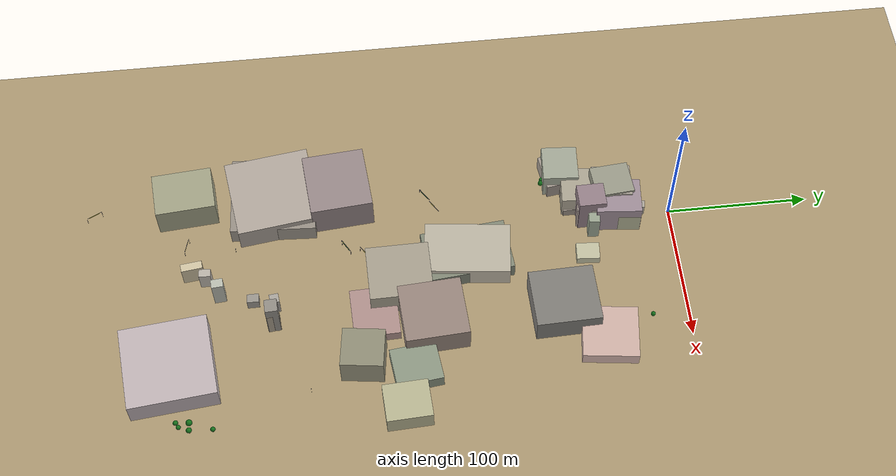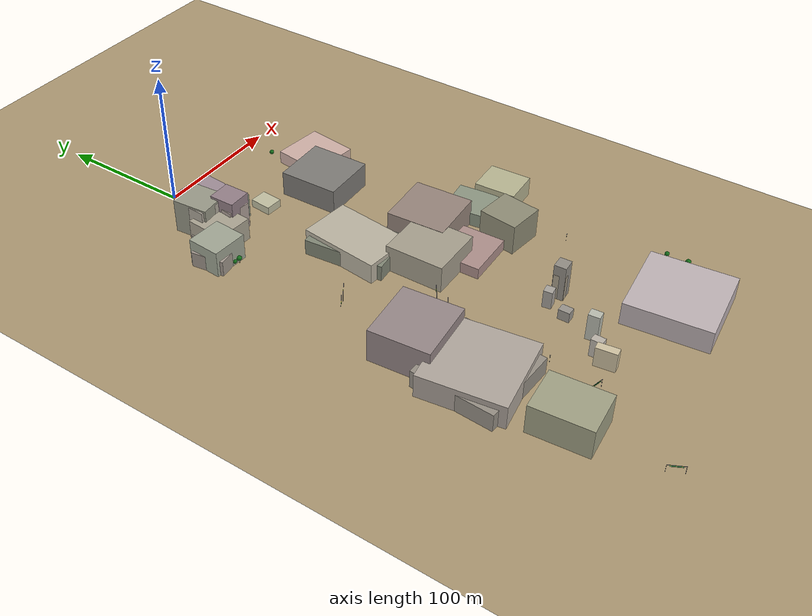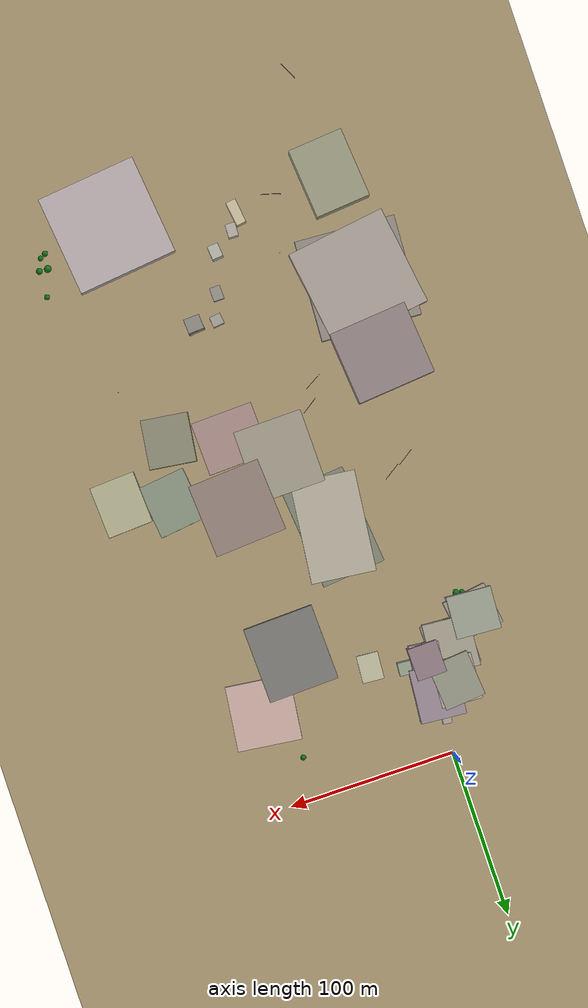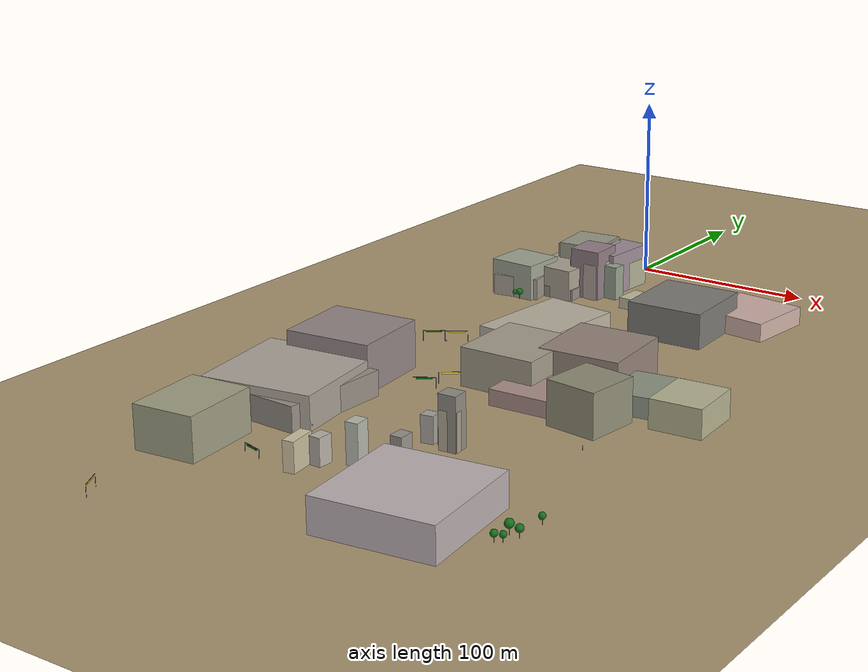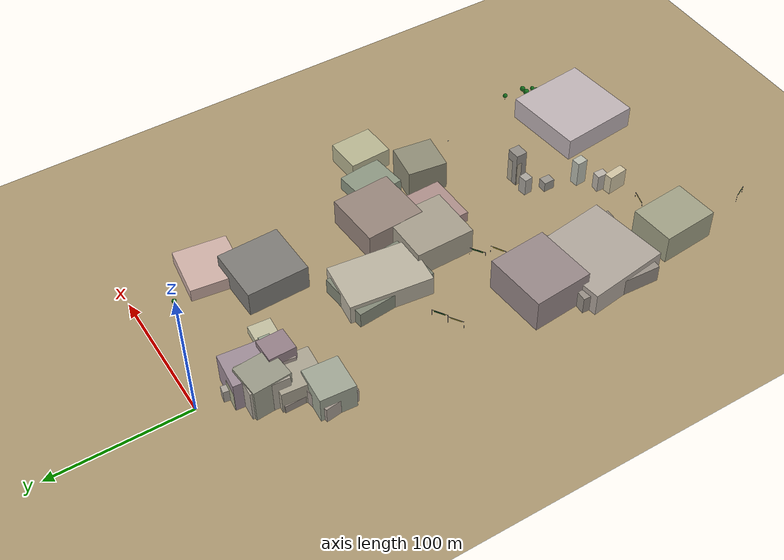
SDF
<sdf version="1.9">
 <world name="crossroad_world">
  <model name="ground_plane">
   <static>true</static>
   <pose>0 0 -0.05 0 0 0</pose>
   <link name="link">
    <collision name="collision">
     <geometry><plane><normal>0 0 1</normal><size>10000 10000</size></plane></geometry>
    </collision>
    <visual name="visual">
     <geometry><plane><normal>0 0 1</normal><size>15000 15000</size></plane></geometry>
     <material><ambient>0.68 0.60 0.45 1</ambient><diffuse>0.68 0.60 0.45 1</diffuse></material>
    </visual>
   </link>
  </model>
  <model name="tl_1">
   <static>true</static>
   <pose>2.700 -309.345 0 0 0 1.276</pose>
   <link name="link">
    <visual name="pole">
     <pose>0 0 2.750 0 0 0</pose>
     <geometry><cylinder><radius>0.06</radius><length>5.50</length></cylinder></geometry>
     <material><ambient>0.25 0.25 0.25 1</ambient><diffuse>0.25 0.25 0.25 1</diffuse></material>
    </visual>
    <visual name="housing">
     <pose>0 0 5.950 0 0 0</pose>
     <geometry><box><size>0.33 0.33 0.9</size></box></geometry>
     <material><ambient>0.08 0.08 0.08 1</ambient><diffuse>0.08 0.08 0.08 1</diffuse></material>
    </visual>
    <visual name="red">
     <pose>0 0 6.250 0 0 0</pose>
     <geometry><sphere><radius>0.09</radius></sphere></geometry>
     <material>
      <ambient>0.90 0.05 0.05 1</ambient>
      <diffuse>0.90 0.05 0.05 1</diffuse>
      <emissive>0.6 0 0 1</emissive>
     </material>
    </visual>
    <visual name="amber">
     <pose>0 0 5.950 0 0 0</pose>
     <geometry><sphere><radius>0.09</radius></sphere></geometry>
     <material><ambient>0.90 0.55 0.00 1</ambient><diffuse>0.90 0.55 0.00 1</diffuse></material>
    </visual>
    <visual name="green">
     <pose>0 0 5.650 0 0 0</pose>
     <geometry><sphere><radius>0.09</radius></sphere></geometry>
     <material><ambient>0.00 0.78 0.00 1</ambient><diffuse>0.00 0.78 0.00 1</diffuse></material>
    </visual>
    <collision name="col">
     <pose>0 0 2.750 0 0 0</pose>
     <geometry><cylinder><radius>0.06</radius><length>5.50</length></cylinder></geometry>
    </collision>
   </link>
  </model>
  <model name="tl_3">
   <static>true</static>
   <pose>118.100 -262.215 0 0 0 6.044</pose>
   <link name="link">
    <visual name="pole">
     <pose>0 0 2.750 0 0 0</pose>
     <geometry><cylinder><radius>0.06</radius><length>5.50</length></cylinder></geometry>
     <material><ambient>0.25 0.25 0.25 1</ambient><diffuse>0.25 0.25 0.25 1</diffuse></material>
    </visual>
    <visual name="housing">
     <pose>0 0 5.950 0 0 0</pose>
     <geometry><box><size>0.33 0.33 0.9</size></box></geometry>
     <material><ambient>0.08 0.08 0.08 1</ambient><diffuse>0.08 0.08 0.08 1</diffuse></material>
    </visual>
    <visual name="red">
     <pose>0 0 6.250 0 0 0</pose>
     <geometry><sphere><radius>0.09</radius></sphere></geometry>
     <material>
      <ambient>0.90 0.05 0.05 1</ambient>
      <diffuse>0.90 0.05 0.05 1</diffuse>
      <emissive>0.6 0 0 1</emissive>
     </material>
    </visual>
    <visual name="amber">
     <pose>0 0 5.950 0 0 0</pose>
     <geometry><sphere><radius>0.09</radius></sphere></geometry>
     <material><ambient>0.90 0.55 0.00 1</ambient><diffuse>0.90 0.55 0.00 1</diffuse></material>
    </visual>
    <visual name="green">
     <pose>0 0 5.650 0 0 0</pose>
     <geometry><sphere><radius>0.09</radius></sphere></geometry>
     <material><ambient>0.00 0.78 0.00 1</ambient><diffuse>0.00 0.78 0.00 1</diffuse></material>
    </visual>
    <collision name="col">
     <pose>0 0 2.750 0 0 0</pose>
     <geometry><cylinder><radius>0.06</radius><length>5.50</length></cylinder></geometry>
    </collision>
   </link>
  </model>
  <model name="gantry_0">
   <static>true</static>
   <pose>-3.222 -343.393 0 0 0 -0.270</pose>
   <link name="link">
    <visual name="post_l">
     <pose>-5.700 0 2.925 0 0 0</pose>
     <geometry><cylinder><radius>0.1</radius><length>5.85</length></cylinder></geometry>
     <material><ambient>0.30 0.30 0.35 1</ambient><diffuse>0.30 0.30 0.35 1</diffuse></material>
    </visual>
    <visual name="post_r">
     <pose>5.700 0 2.925 0 0 0</pose>
     <geometry><cylinder><radius>0.1</radius><length>5.85</length></cylinder></geometry>
     <material><ambient>0.30 0.30 0.35 1</ambient><diffuse>0.30 0.30 0.35 1</diffuse></material>
    </visual>
    <visual name="beam">
     <pose>0 0 6.000 0 0 0</pose>
     <geometry><box><size>11.400 0.22 0.22</size></box></geometry>
     <material><ambient>0.30 0.30 0.35 1</ambient><diffuse>0.30 0.30 0.35 1</diffuse></material>
    </visual>
    <visual name="sign_border">
     <pose>0 -0.14 5.450 0 0 0</pose>
     <geometry><box><size>8.288 0.04 0.92</size></box></geometry>
     <material><ambient>0.90 0.85 0.10 1</ambient><diffuse>0.90 0.85 0.10 1</diffuse></material>
    </visual>
    <visual name="sign_panel">
     <pose>0 -0.15 5.450 0 0 0</pose>
     <geometry><box><size>8.208 0.05 0.86</size></box></geometry>
     <material><ambient>0.05 0.38 0.10 1</ambient><diffuse>0.05 0.38 0.10 1</diffuse></material>
    </visual>
    <collision name="col_post_l">
     <pose>-5.700 0 2.925 0 0 0</pose>
     <geometry><cylinder><radius>0.1</radius><length>5.85</length></cylinder></geometry>
    </collision>
    <collision name="col_post_r">
     <pose>5.700 0 2.925 0 0 0</pose>
     <geometry><cylinder><radius>0.1</radius><length>5.85</length></cylinder></geometry>
    </collision>
    <collision name="col_beam">
     <pose>0 0 6.000 0 0 0</pose>
     <geometry><box><size>11.400 0.22 0.22</size></box></geometry>
    </collision>
   </link>
  </model>
  <model name="gantry_27">
   <static>true</static>
   <pose>-28.778 -172.807 0 0 0 0.592</pose>
   <link name="link">
    <visual name="post_l">
     <pose>-5.700 0 2.925 0 0 0</pose>
     <geometry><cylinder><radius>0.1</radius><length>5.85</length></cylinder></geometry>
     <material><ambient>0.30 0.30 0.35 1</ambient><diffuse>0.30 0.30 0.35 1</diffuse></material>
    </visual>
    <visual name="post_r">
     <pose>5.700 0 2.925 0 0 0</pose>
     <geometry><cylinder><radius>0.1</radius><length>5.85</length></cylinder></geometry>
     <material><ambient>0.30 0.30 0.35 1</ambient><diffuse>0.30 0.30 0.35 1</diffuse></material>
    </visual>
    <visual name="beam">
     <pose>0 0 6.000 0 0 0</pose>
     <geometry><box><size>11.400 0.22 0.22</size></box></geometry>
     <material><ambient>0.30 0.30 0.35 1</ambient><diffuse>0.30 0.30 0.35 1</diffuse></material>
    </visual>
    <visual name="sign_border">
     <pose>0 -0.14 5.450 0 0 0</pose>
     <geometry><box><size>8.288 0.04 0.92</size></box></geometry>
     <material><ambient>0.90 0.85 0.10 1</ambient><diffuse>0.90 0.85 0.10 1</diffuse></material>
    </visual>
    <visual name="sign_panel">
     <pose>0 -0.15 5.450 0 0 0</pose>
     <geometry><box><size>8.208 0.05 0.86</size></box></geometry>
     <material><ambient>0.05 0.38 0.10 1</ambient><diffuse>0.05 0.38 0.10 1</diffuse></material>
    </visual>
    <collision name="col_post_l">
     <pose>-5.700 0 2.925 0 0 0</pose>
     <geometry><cylinder><radius>0.1</radius><length>5.85</length></cylinder></geometry>
    </collision>
    <collision name="col_post_r">
     <pose>5.700 0 2.925 0 0 0</pose>
     <geometry><cylinder><radius>0.1</radius><length>5.85</length></cylinder></geometry>
    </collision>
    <collision name="col_beam">
     <pose>0 0 6.000 0 0 0</pose>
     <geometry><box><size>11.400 0.22 0.22</size></box></geometry>
    </collision>
   </link>
  </model>
  <model name="gantry_28">
   <static>true</static>
   <pose>8.556 -231.675 0 0 0 0.530</pose>
   <link name="link">
    <visual name="post_l">
     <pose>-5.700 0 2.925 0 0 0</pose>
     <geometry><cylinder><radius>0.1</radius><length>5.85</length></cylinder></geometry>
     <material><ambient>0.30 0.30 0.35 1</ambient><diffuse>0.30 0.30 0.35 1</diffuse></material>
    </visual>
    <visual name="post_r">
     <pose>5.700 0 2.925 0 0 0</pose>
     <geometry><cylinder><radius>0.1</radius><length>5.85</length></cylinder></geometry>
     <material><ambient>0.30 0.30 0.35 1</ambient><diffuse>0.30 0.30 0.35 1</diffuse></material>
    </visual>
    <visual name="beam">
     <pose>0 0 6.000 0 0 0</pose>
     <geometry><box><size>11.400 0.22 0.22</size></box></geometry>
     <material><ambient>0.30 0.30 0.35 1</ambient><diffuse>0.30 0.30 0.35 1</diffuse></material>
    </visual>
    <visual name="sign_border">
     <pose>0 -0.14 5.450 0 0 0</pose>
     <geometry><box><size>8.288 0.04 0.92</size></box></geometry>
     <material><ambient>0.90 0.85 0.10 1</ambient><diffuse>0.90 0.85 0.10 1</diffuse></material>
    </visual>
    <visual name="sign_panel">
     <pose>0 -0.15 5.450 0 0 0</pose>
     <geometry><box><size>8.208 0.05 0.86</size></box></geometry>
     <material><ambient>0.05 0.38 0.10 1</ambient><diffuse>0.05 0.38 0.10 1</diffuse></material>
    </visual>
    <collision name="col_post_l">
     <pose>-5.700 0 2.925 0 0 0</pose>
     <geometry><cylinder><radius>0.1</radius><length>5.85</length></cylinder></geometry>
    </collision>
    <collision name="col_post_r">
     <pose>5.700 0 2.925 0 0 0</pose>
     <geometry><cylinder><radius>0.1</radius><length>5.85</length></cylinder></geometry>
    </collision>
    <collision name="col_beam">
     <pose>0 0 6.000 0 0 0</pose>
     <geometry><box><size>11.400 0.22 0.22</size></box></geometry>
    </collision>
   </link>
  </model>
  <model name="gantry_29">
   <static>true</static>
   <pose>14.913 -218.958 0 0 0 3.746</pose>
   <link name="link">
    <visual name="post_l">
     <pose>-5.700 0 2.925 0 0 0</pose>
     <geometry><cylinder><radius>0.1</radius><length>5.85</length></cylinder></geometry>
     <material><ambient>0.30 0.30 0.35 1</ambient><diffuse>0.30 0.30 0.35 1</diffuse></material>
    </visual>
    <visual name="post_r">
     <pose>5.700 0 2.925 0 0 0</pose>
     <geometry><cylinder><radius>0.1</radius><length>5.85</length></cylinder></geometry>
     <material><ambient>0.30 0.30 0.35 1</ambient><diffuse>0.30 0.30 0.35 1</diffuse></material>
    </visual>
    <visual name="beam">
     <pose>0 0 6.000 0 0 0</pose>
     <geometry><box><size>11.400 0.22 0.22</size></box></geometry>
     <material><ambient>0.30 0.30 0.35 1</ambient><diffuse>0.30 0.30 0.35 1</diffuse></material>
    </visual>
    <visual name="sign_border">
     <pose>0 -0.14 5.450 0 0 0</pose>
     <geometry><box><size>8.288 0.04 0.92</size></box></geometry>
     <material><ambient>0.90 0.85 0.10 1</ambient><diffuse>0.90 0.85 0.10 1</diffuse></material>
    </visual>
    <visual name="sign_panel">
     <pose>0 -0.15 5.450 0 0 0</pose>
     <geometry><box><size>8.208 0.05 0.86</size></box></geometry>
     <material><ambient>0.05 0.38 0.10 1</ambient><diffuse>0.05 0.38 0.10 1</diffuse></material>
    </visual>
    <collision name="col_post_l">
     <pose>-5.700 0 2.925 0 0 0</pose>
     <geometry><cylinder><radius>0.1</radius><length>5.85</length></cylinder></geometry>
    </collision>
    <collision name="col_post_r">
     <pose>5.700 0 2.925 0 0 0</pose>
     <geometry><cylinder><radius>0.1</radius><length>5.85</length></cylinder></geometry>
    </collision>
    <collision name="col_beam">
     <pose>0 0 6.000 0 0 0</pose>
     <geometry><box><size>11.400 0.22 0.22</size></box></geometry>
    </collision>
   </link>
  </model>
  <model name="gantry_30">
   <static>true</static>
   <pose>-18.262 -167.078 0 0 0 3.722</pose>
   <link name="link">
    <visual name="post_l">
     <pose>-5.700 0 2.925 0 0 0</pose>
     <geometry><cylinder><radius>0.1</radius><length>5.85</length></cylinder></geometry>
     <material><ambient>0.30 0.30 0.35 1</ambient><diffuse>0.30 0.30 0.35 1</diffuse></material>
    </visual>
    <visual name="post_r">
     <pose>5.700 0 2.925 0 0 0</pose>
     <geometry><cylinder><radius>0.1</radius><length>5.85</length></cylinder></geometry>
     <material><ambient>0.30 0.30 0.35 1</ambient><diffuse>0.30 0.30 0.35 1</diffuse></material>
    </visual>
    <visual name="beam">
     <pose>0 0 6.000 0 0 0</pose>
     <geometry><box><size>11.400 0.22 0.22</size></box></geometry>
     <material><ambient>0.30 0.30 0.35 1</ambient><diffuse>0.30 0.30 0.35 1</diffuse></material>
    </visual>
    <visual name="sign_border">
     <pose>0 -0.14 5.450 0 0 0</pose>
     <geometry><box><size>8.288 0.04 0.92</size></box></geometry>
     <material><ambient>0.90 0.85 0.10 1</ambient><diffuse>0.90 0.85 0.10 1</diffuse></material>
    </visual>
    <visual name="sign_panel">
     <pose>0 -0.15 5.450 0 0 0</pose>
     <geometry><box><size>8.208 0.05 0.86</size></box></geometry>
     <material><ambient>0.05 0.38 0.10 1</ambient><diffuse>0.05 0.38 0.10 1</diffuse></material>
    </visual>
    <collision name="col_post_l">
     <pose>-5.700 0 2.925 0 0 0</pose>
     <geometry><cylinder><radius>0.1</radius><length>5.85</length></cylinder></geometry>
    </collision>
    <collision name="col_post_r">
     <pose>5.700 0 2.925 0 0 0</pose>
     <geometry><cylinder><radius>0.1</radius><length>5.85</length></cylinder></geometry>
    </collision>
    <collision name="col_beam">
     <pose>0 0 6.000 0 0 0</pose>
     <geometry><box><size>11.400 0.22 0.22</size></box></geometry>
    </collision>
   </link>
  </model>
  <model name="gantry_46">
   <static>true</static>
   <pose>-35.611 -408.534 0 0 0 -1.103</pose>
   <link name="link">
    <visual name="post_l">
     <pose>-5.700 0 2.925 0 0 0</pose>
     <geometry><cylinder><radius>0.1</radius><length>5.85</length></cylinder></geometry>
     <material><ambient>0.30 0.30 0.35 1</ambient><diffuse>0.30 0.30 0.35 1</diffuse></material>
    </visual>
    <visual name="post_r">
     <pose>5.700 0 2.925 0 0 0</pose>
     <geometry><cylinder><radius>0.1</radius><length>5.85</length></cylinder></geometry>
     <material><ambient>0.30 0.30 0.35 1</ambient><diffuse>0.30 0.30 0.35 1</diffuse></material>
    </visual>
    <visual name="beam">
     <pose>0 0 6.000 0 0 0</pose>
     <geometry><box><size>11.400 0.22 0.22</size></box></geometry>
     <material><ambient>0.30 0.30 0.35 1</ambient><diffuse>0.30 0.30 0.35 1</diffuse></material>
    </visual>
    <visual name="sign_border">
     <pose>0 -0.14 5.450 0 0 0</pose>
     <geometry><box><size>8.288 0.04 0.92</size></box></geometry>
     <material><ambient>0.90 0.85 0.10 1</ambient><diffuse>0.90 0.85 0.10 1</diffuse></material>
    </visual>
    <visual name="sign_panel">
     <pose>0 -0.15 5.450 0 0 0</pose>
     <geometry><box><size>8.208 0.05 0.86</size></box></geometry>
     <material><ambient>0.05 0.38 0.10 1</ambient><diffuse>0.05 0.38 0.10 1</diffuse></material>
    </visual>
    <collision name="col_post_l">
     <pose>-5.700 0 2.925 0 0 0</pose>
     <geometry><cylinder><radius>0.1</radius><length>5.85</length></cylinder></geometry>
    </collision>
    <collision name="col_post_r">
     <pose>5.700 0 2.925 0 0 0</pose>
     <geometry><cylinder><radius>0.1</radius><length>5.85</length></cylinder></geometry>
    </collision>
    <collision name="col_beam">
     <pose>0 0 6.000 0 0 0</pose>
     <geometry><box><size>11.400 0.22 0.22</size></box></geometry>
    </collision>
   </link>
  </model>
  <model name="tree_180">
   <static>true</static>
   <pose>84.039 -25.496 0 0 0 0</pose>
   <link name="link">
    <visual name="trunk">
     <pose>0 0 1.393 0 0 0</pose>
     <geometry><cylinder><radius>0.122</radius><length>2.786</length></cylinder></geometry>
     <material><ambient>0.38 0.22 0.08 1</ambient><diffuse>0.38 0.22 0.08 1</diffuse></material>
    </visual>
    <visual name="canopy">
     <pose>0 0 3.861 0 0 0</pose>
     <geometry><sphere><radius>1.654</radius></sphere></geometry>
     <material><ambient>0.08 0.44 0.10 1</ambient><diffuse>0.08 0.44 0.10 1</diffuse></material>
    </visual>
    <collision name="col">
     <pose>0 0 1.393 0 0 0</pose>
     <geometry><cylinder><radius>0.122</radius><length>2.786</length></cylinder></geometry>
    </collision>
   </link>
  </model>
  <model name="tree_190">
   <static>true</static>
   <pose>-34.600 -87.663 0 0 0 0</pose>
   <link name="link">
    <visual name="trunk">
     <pose>0 0 1.228 0 0 0</pose>
     <geometry><cylinder><radius>0.107</radius><length>2.456</length></cylinder></geometry>
     <material><ambient>0.38 0.22 0.08 1</ambient><diffuse>0.38 0.22 0.08 1</diffuse></material>
    </visual>
    <visual name="canopy">
     <pose>0 0 3.404 0 0 0</pose>
     <geometry><sphere><radius>1.458</radius></sphere></geometry>
     <material><ambient>0.08 0.44 0.10 1</ambient><diffuse>0.08 0.44 0.10 1</diffuse></material>
    </visual>
    <collision name="col">
     <pose>0 0 1.228 0 0 0</pose>
     <geometry><cylinder><radius>0.107</radius><length>2.456</length></cylinder></geometry>
    </collision>
   </link>
  </model>
  <model name="tree_191">
   <static>true</static>
   <pose>-31.122 -88.505 0 0 0 0</pose>
   <link name="link">
    <visual name="trunk">
     <pose>0 0 1.560 0 0 0</pose>
     <geometry><cylinder><radius>0.136</radius><length>3.120</length></cylinder></geometry>
     <material><ambient>0.38 0.22 0.08 1</ambient><diffuse>0.38 0.22 0.08 1</diffuse></material>
    </visual>
    <visual name="canopy">
     <pose>0 0 4.324 0 0 0</pose>
     <geometry><sphere><radius>1.852</radius></sphere></geometry>
     <material><ambient>0.08 0.44 0.10 1</ambient><diffuse>0.08 0.44 0.10 1</diffuse></material>
    </visual>
    <collision name="col">
     <pose>0 0 1.560 0 0 0</pose>
     <geometry><cylinder><radius>0.136</radius><length>3.120</length></cylinder></geometry>
    </collision>
   </link>
  </model>
  <model name="tree_194">
   <static>true</static>
   <pose>139.788 -328.157 0 0 0 0</pose>
   <link name="link">
    <visual name="trunk">
     <pose>0 0 1.416 0 0 0</pose>
     <geometry><cylinder><radius>0.124</radius><length>2.832</length></cylinder></geometry>
     <material><ambient>0.38 0.22 0.08 1</ambient><diffuse>0.38 0.22 0.08 1</diffuse></material>
    </visual>
    <visual name="canopy">
     <pose>0 0 3.926 0 0 0</pose>
     <geometry><sphere><radius>1.682</radius></sphere></geometry>
     <material><ambient>0.08 0.44 0.10 1</ambient><diffuse>0.08 0.44 0.10 1</diffuse></material>
    </visual>
    <collision name="col">
     <pose>0 0 1.416 0 0 0</pose>
     <geometry><cylinder><radius>0.124</radius><length>2.832</length></cylinder></geometry>
    </collision>
   </link>
  </model>
  <model name="tree_201">
   <static>true</static>
   <pose>134.055 -343.575 0 0 0 0</pose>
   <link name="link">
    <visual name="trunk">
     <pose>0 0 1.851 0 0 0</pose>
     <geometry><cylinder><radius>0.162</radius><length>3.702</length></cylinder></geometry>
     <material><ambient>0.38 0.22 0.08 1</ambient><diffuse>0.38 0.22 0.08 1</diffuse></material>
    </visual>
    <visual name="canopy">
     <pose>0 0 5.130 0 0 0</pose>
     <geometry><sphere><radius>2.198</radius></sphere></geometry>
     <material><ambient>0.08 0.44 0.10 1</ambient><diffuse>0.08 0.44 0.10 1</diffuse></material>
    </visual>
    <collision name="col">
     <pose>0 0 1.851 0 0 0</pose>
     <geometry><cylinder><radius>0.162</radius><length>3.702</length></cylinder></geometry>
    </collision>
   </link>
  </model>
  <model name="tree_207">
   <static>true</static>
   <pose>136.064 -350.824 0 0 0 0</pose>
   <link name="link">
    <visual name="trunk">
     <pose>0 0 1.362 0 0 0</pose>
     <geometry><cylinder><radius>0.119</radius><length>2.724</length></cylinder></geometry>
     <material><ambient>0.38 0.22 0.08 1</ambient><diffuse>0.38 0.22 0.08 1</diffuse></material>
    </visual>
    <visual name="canopy">
     <pose>0 0 3.775 0 0 0</pose>
     <geometry><sphere><radius>1.617</radius></sphere></geometry>
     <material><ambient>0.08 0.44 0.10 1</ambient><diffuse>0.08 0.44 0.10 1</diffuse></material>
    </visual>
    <collision name="col">
     <pose>0 0 1.362 0 0 0</pose>
     <geometry><cylinder><radius>0.119</radius><length>2.724</length></cylinder></geometry>
    </collision>
   </link>
  </model>
  <model name="tree_218">
   <static>true</static>
   <pose>132.787 -352.606 0 0 0 0</pose>
   <link name="link">
    <visual name="trunk">
     <pose>0 0 1.464 0 0 0</pose>
     <geometry><cylinder><radius>0.128</radius><length>2.928</length></cylinder></geometry>
     <material><ambient>0.38 0.22 0.08 1</ambient><diffuse>0.38 0.22 0.08 1</diffuse></material>
    </visual>
    <visual name="canopy">
     <pose>0 0 4.057 0 0 0</pose>
     <geometry><sphere><radius>1.738</radius></sphere></geometry>
     <material><ambient>0.08 0.44 0.10 1</ambient><diffuse>0.08 0.44 0.10 1</diffuse></material>
    </visual>
    <collision name="col">
     <pose>0 0 1.464 0 0 0</pose>
     <geometry><cylinder><radius>0.128</radius><length>2.928</length></cylinder></geometry>
    </collision>
   </link>
  </model>
  <model name="tree_240">
   <static>true</static>
   <pose>139.187 -343.844 0 0 0 0</pose>
   <link name="link">
    <visual name="trunk">
     <pose>0 0 1.622 0 0 0</pose>
     <geometry><cylinder><radius>0.142</radius><length>3.243</length></cylinder></geometry>
     <material><ambient>0.38 0.22 0.08 1</ambient><diffuse>0.38 0.22 0.08 1</diffuse></material>
    </visual>
    <visual name="canopy">
     <pose>0 0 4.495 0 0 0</pose>
     <geometry><sphere><radius>1.926</radius></sphere></geometry>
     <material><ambient>0.08 0.44 0.10 1</ambient><diffuse>0.08 0.44 0.10 1</diffuse></material>
    </visual>
    <collision name="col">
     <pose>0 0 1.622 0 0 0</pose>
     <geometry><cylinder><radius>0.142</radius><length>3.243</length></cylinder></geometry>
    </collision>
   </link>
  </model>
  <model name="building_199">
   <static>true</static>
   <pose>41.169 -196.468 10.241 0 0 0.015</pose>
   <link name="link">
    <visual name="body">
     <geometry><box><size>41.09 43.73 20.48</size></box></geometry>
     <material><ambient>0.66 0.63 0.56 1</ambient><diffuse>0.66 0.63 0.56 1</diffuse></material>
    </visual>
    <collision name="col"><geometry><box><size>41.09 43.73 20.48</size></box></geometry></collision>
   </link>
  </model>
  <model name="building_200">
   <static>true</static>
   <pose>64.889 -215.564 4.210 0 0 0.032</pose>
   <link name="link">
    <visual name="body">
     <geometry><box><size>37.21 31.90 8.42</size></box></geometry>
     <material><ambient>0.69 0.57 0.55 1</ambient><diffuse>0.69 0.57 0.55 1</diffuse></material>
    </visual>
    <collision name="col"><geometry><box><size>37.21 31.90 8.42</size></box></geometry></collision>
   </link>
  </model>
  <model name="building_267">
   <static>true</static>
   <pose>63.554 -284.882 9.702 0 0 0.128</pose>
   <link name="link">
    <visual name="body">
     <geometry><box><size>9.49 8.63 19.40</size></box></geometry>
     <material><ambient>0.69 0.65 0.57 1</ambient><diffuse>0.69 0.65 0.57 1</diffuse></material>
    </visual>
    <collision name="col"><geometry><box><size>9.49 8.63 19.40</size></box></geometry></collision>
   </link>
  </model>
  <model name="building_268">
   <static>true</static>
   <pose>63.554 -284.882 13.594 0 0 0.047</pose>
   <link name="link">
    <visual name="body">
     <geometry><box><size>9.49 8.63 27.19</size></box></geometry>
     <material><ambient>0.58 0.56 0.53 1</ambient><diffuse>0.58 0.56 0.53 1</diffuse></material>
    </visual>
    <collision name="col"><geometry><box><size>9.49 8.63 27.19</size></box></geometry></collision>
   </link>
  </model>
  <model name="building_269">
   <static>true</static>
   <pose>38.387 -321.244 10.281 0 0 0.090</pose>
   <link name="link">
    <visual name="body">
     <geometry><box><size>6.51 8.17 20.56</size></box></geometry>
     <material><ambient>0.74 0.75 0.70 1</ambient><diffuse>0.74 0.75 0.70 1</diffuse></material>
    </visual>
    <collision name="col"><geometry><box><size>6.51 8.17 20.56</size></box></geometry></collision>
   </link>
  </model>
  <model name="building_270">
   <static>true</static>
   <pose>45.209 -298.457 3.903 0 0 0.005</pose>
   <link name="link">
    <visual name="body">
     <geometry><box><size>6.37 8.22 7.81</size></box></geometry>
     <material><ambient>0.61 0.59 0.56 1</ambient><diffuse>0.61 0.59 0.56 1</diffuse></material>
    </visual>
    <collision name="col"><geometry><box><size>6.37 8.22 7.81</size></box></geometry></collision>
   </link>
  </model>
  <model name="building_271">
   <static>true</static>
   <pose>50.246 -283.336 6.825 0 0 0.125</pose>
   <link name="link">
    <visual name="body">
     <geometry><box><size>6.73 6.35 13.65</size></box></geometry>
     <material><ambient>0.67 0.65 0.62 1</ambient><diffuse>0.67 0.65 0.62 1</diffuse></material>
    </visual>
    <collision name="col"><geometry><box><size>6.73 6.35 13.65</size></box></geometry></collision>
   </link>
  </model>
  <model name="building_272">
   <static>true</static>
   <pose>11.333 -56.456 9.460 0 0 -0.071</pose>
   <link name="link">
    <visual name="body">
     <geometry><box><size>7.69 7.64 18.92</size></box></geometry>
     <material><ambient>0.61 0.65 0.57 1</ambient><diffuse>0.61 0.65 0.57 1</diffuse></material>
    </visual>
    <collision name="col"><geometry><box><size>7.69 7.64 18.92</size></box></geometry></collision>
   </link>
  </model>
  <model name="building_345">
   <static>true</static>
   <pose>-2.836 -22.246 4.778 0 0 -0.148</pose>
   <link name="link">
    <visual name="body">
     <geometry><box><size>5.41 9.22 9.56</size></box></geometry>
     <material><ambient>0.68 0.65 0.61 1</ambient><diffuse>0.68 0.65 0.61 1</diffuse></material>
    </visual>
    <collision name="col"><geometry><box><size>5.41 9.22 9.56</size></box></geometry></collision>
   </link>
  </model>
  <model name="building_347">
   <static>true</static>
   <pose>-2.020 -57.164 10.099 0 0 -0.126</pose>
   <link name="link">
    <visual name="body">
     <geometry><box><size>17.54 19.20 20.20</size></box></geometry>
     <material><ambient>0.70 0.64 0.61 1</ambient><diffuse>0.70 0.64 0.61 1</diffuse></material>
    </visual>
    <collision name="col"><geometry><box><size>17.54 19.20 20.20</size></box></geometry></collision>
   </link>
  </model>
  <model name="building_348">
   <static>true</static>
   <pose>-2.020 -57.164 13.930 0 0 0.014</pose>
   <link name="link">
    <visual name="body">
     <geometry><box><size>17.54 19.20 27.86</size></box></geometry>
     <material><ambient>0.59 0.51 0.54 1</ambient><diffuse>0.59 0.51 0.54 1</diffuse></material>
    </visual>
    <collision name="col"><geometry><box><size>17.54 19.20 27.86</size></box></geometry></collision>
   </link>
  </model>
  <model name="building_355">
   <static>true</static>
   <pose>25.172 -330.329 6.902 0 0 -0.034</pose>
   <link name="link">
    <visual name="body">
     <geometry><box><size>5.95 8.04 13.80</size></box></geometry>
     <material><ambient>0.74 0.71 0.67 1</ambient><diffuse>0.74 0.71 0.67 1</diffuse></material>
    </visual>
    <collision name="col"><geometry><box><size>5.95 8.04 13.80</size></box></geometry></collision>
   </link>
  </model>
  <model name="building_357">
   <static>true</static>
   <pose>30.231 -62.927 3.049 0 0 -0.072</pose>
   <link name="link">
    <visual name="body">
     <geometry><box><size>12.85 16.17 6.10</size></box></geometry>
     <material><ambient>0.77 0.76 0.64 1</ambient><diffuse>0.77 0.76 0.64 1</diffuse></material>
    </visual>
    <collision name="col"><geometry><box><size>12.85 16.17 6.10</size></box></geometry></collision>
   </link>
  </model>
  <model name="building_373">
   <static>true</static>
   <pose>19.576 -339.188 7.520 0 0 0.133</pose>
   <link name="link">
    <visual name="body">
     <geometry><box><size>5.92 14.81 15.04</size></box></geometry>
     <material><ambient>0.83 0.78 0.65 1</ambient><diffuse>0.83 0.78 0.65 1</diffuse></material>
    </visual>
    <collision name="col"><geometry><box><size>5.92 14.81 15.04</size></box></geometry></collision>
   </link>
  </model>
  <model name="building_398">
   <static>true</static>
   <pose>-34.397 -234.259 12.735 0 0 0.088</pose>
   <link name="link">
    <visual name="body">
     <geometry><box><size>47.17 43.70 25.47</size></box></geometry>
     <material><ambient>0.60 0.54 0.54 1</ambient><diffuse>0.60 0.54 0.54 1</diffuse></material>
    </visual>
    <collision name="col"><geometry><box><size>47.17 43.70 25.47</size></box></geometry></collision>
   </link>
  </model>
  <model name="building_454">
   <static>true</static>
   <pose>-35.502 -280.298 6.691 0 0 -0.054</pose>
   <link name="link">
    <visual name="body">
     <geometry><box><size>60.00 60.00 13.38</size></box></geometry>
     <material><ambient>0.60 0.57 0.53 1</ambient><diffuse>0.60 0.57 0.53 1</diffuse></material>
    </visual>
    <collision name="col"><geometry><box><size>60.00 60.00 13.38</size></box></geometry></collision>
   </link>
  </model>
  <model name="building_455">
   <static>true</static>
   <pose>-35.502 -280.298 8.885 0 0 0.142</pose>
   <link name="link">
    <visual name="body">
     <geometry><box><size>60.00 60.00 17.77</size></box></geometry>
     <material><ambient>0.70 0.66 0.62 1</ambient><diffuse>0.70 0.66 0.62 1</diffuse></material>
    </visual>
    <collision name="col"><geometry><box><size>60.00 60.00 17.77</size></box></geometry></collision>
   </link>
  </model>
  <model name="building_456">
   <static>true</static>
   <pose>-38.727 -343.087 11.176 0 0 0.085</pose>
   <link name="link">
    <visual name="body">
     <geometry><box><size>33.05 41.97 22.35</size></box></geometry>
     <material><ambient>0.64 0.64 0.53 1</ambient><diffuse>0.64 0.64 0.53 1</diffuse></material>
    </visual>
    <collision name="col"><geometry><box><size>33.05 41.97 22.35</size></box></geometry></collision>
   </link>
  </model>
  <model name="building_510">
   <static>true</static>
   <pose>-36.713 -74.449 5.915 0 0 0.139</pose>
   <link name="link">
    <visual name="body">
     <geometry><box><size>26.72 25.05 11.83</size></box></geometry>
     <material><ambient>0.65 0.61 0.57 1</ambient><diffuse>0.65 0.61 0.57 1</diffuse></material>
    </visual>
    <collision name="col"><geometry><box><size>26.72 25.05 11.83</size></box></geometry></collision>
   </link>
  </model>
  <model name="building_511">
   <static>true</static>
   <pose>-36.713 -74.449 9.973 0 0 -0.064</pose>
   <link name="link">
    <visual name="body">
     <geometry><box><size>26.72 25.05 19.95</size></box></geometry>
     <material><ambient>0.64 0.66 0.59 1</ambient><diffuse>0.64 0.66 0.59 1</diffuse></material>
    </visual>
    <collision name="col"><geometry><box><size>26.72 25.05 19.95</size></box></geometry></collision>
   </link>
  </model>
  <model name="building_512">
   <static>true</static>
   <pose>-18.394 -60.650 3.057 0 0 0.012</pose>
   <link name="link">
    <visual name="body">
     <geometry><box><size>27.57 30.34 6.11</size></box></geometry>
     <material><ambient>0.60 0.56 0.52 1</ambient><diffuse>0.60 0.56 0.52 1</diffuse></material>
    </visual>
    <collision name="col"><geometry><box><size>27.57 30.34 6.11</size></box></geometry></collision>
   </link>
  </model>
  <model name="building_513">
   <static>true</static>
   <pose>-18.394 -60.650 8.607 0 0 -0.075</pose>
   <link name="link">
    <visual name="body">
     <geometry><box><size>27.57 30.34 17.21</size></box></geometry>
     <material><ambient>0.68 0.65 0.58 1</ambient><diffuse>0.68 0.65 0.58 1</diffuse></material>
    </visual>
    <collision name="col"><geometry><box><size>27.57 30.34 17.21</size></box></geometry></collision>
   </link>
  </model>
  <model name="building_514">
   <static>true</static>
   <pose>-14.542 -40.653 13.047 0 0 0.087</pose>
   <link name="link">
    <visual name="body">
     <geometry><box><size>24.42 27.18 26.09</size></box></geometry>
     <material><ambient>0.61 0.61 0.54 1</ambient><diffuse>0.61 0.61 0.54 1</diffuse></material>
    </visual>
    <collision name="col"><geometry><box><size>24.42 27.18 26.09</size></box></geometry></collision>
   </link>
  </model>
  <model name="building_515">
   <static>true</static>
   <pose>-14.542 -40.653 12.373 0 0 -0.054</pose>
   <link name="link">
    <visual name="body">
     <geometry><box><size>24.42 27.18 24.75</size></box></geometry>
     <material><ambient>0.70 0.67 0.62 1</ambient><diffuse>0.70 0.67 0.62 1</diffuse></material>
    </visual>
    <collision name="col"><geometry><box><size>24.42 27.18 24.75</size></box></geometry></collision>
   </link>
  </model>
  <model name="building_516">
   <static>true</static>
   <pose>71.489 -85.631 9.618 0 0 0.030</pose>
   <link name="link">
    <visual name="body">
     <geometry><box><size>42.03 44.96 19.24</size></box></geometry>
     <material><ambient>0.50 0.49 0.47 1</ambient><diffuse>0.50 0.49 0.47 1</diffuse></material>
    </visual>
    <collision name="col"><geometry><box><size>42.03 44.96 19.24</size></box></geometry></collision>
   </link>
  </model>
  <model name="building_517">
   <static>true</static>
   <pose>97.653 -57.669 5.013 0 0 -0.123</pose>
   <link name="link">
    <visual name="body">
     <geometry><box><size>38.14 38.30 10.03</size></box></geometry>
     <material><ambient>0.82 0.70 0.66 1</ambient><diffuse>0.82 0.70 0.66 1</diffuse></material>
    </visual>
    <collision name="col"><geometry><box><size>38.14 38.30 10.03</size></box></geometry></collision>
   </link>
  </model>
  <model name="building_530">
   <static>true</static>
   <pose>-2.170 -37.612 11.702 0 0 -0.084</pose>
   <link name="link">
    <visual name="body">
     <geometry><box><size>26.90 31.56 23.40</size></box></geometry>
     <material><ambient>0.63 0.56 0.60 1</ambient><diffuse>0.63 0.56 0.60 1</diffuse></material>
    </visual>
    <collision name="col"><geometry><box><size>26.90 31.56 23.40</size></box></geometry></collision>
   </link>
  </model>
  <model name="building_531">
   <static>true</static>
   <pose>-2.170 -37.612 7.732 0 0 -0.098</pose>
   <link name="link">
    <visual name="body">
     <geometry><box><size>26.90 31.56 15.46</size></box></geometry>
     <material><ambient>0.70 0.70 0.58 1</ambient><diffuse>0.70 0.70 0.58 1</diffuse></material>
    </visual>
    <collision name="col"><geometry><box><size>26.90 31.56 15.46</size></box></geometry></collision>
   </link>
  </model>
  <model name="building_652">
   <static>true</static>
   <pose>73.916 -175.988 10.354 0 0 0.063</pose>
   <link name="link">
    <visual name="body">
     <geometry><box><size>43.20 43.79 20.71</size></box></geometry>
     <material><ambient>0.60 0.53 0.49 1</ambient><diffuse>0.60 0.53 0.49 1</diffuse></material>
    </visual>
    <collision name="col"><geometry><box><size>43.20 43.79 20.71</size></box></geometry></collision>
   </link>
  </model>
  <model name="building_683">
   <static>true</static>
   <pose>24.635 -147.703 7.725 0 0 -0.110</pose>
   <link name="link">
    <visual name="body">
     <geometry><box><size>38.51 60.00 15.45</size></box></geometry>
     <material><ambient>0.74 0.71 0.64 1</ambient><diffuse>0.74 0.71 0.64 1</diffuse></material>
    </visual>
    <collision name="col"><geometry><box><size>38.51 60.00 15.45</size></box></geometry></collision>
   </link>
  </model>
  <model name="building_684">
   <static>true</static>
   <pose>24.635 -147.703 6.045 0 0 0.096</pose>
   <link name="link">
    <visual name="body">
     <geometry><box><size>38.51 60.00 12.09</size></box></geometry>
     <material><ambient>0.52 0.54 0.47 1</ambient><diffuse>0.52 0.54 0.47 1</diffuse></material>
    </visual>
    <collision name="col"><geometry><box><size>38.51 60.00 12.09</size></box></geometry></collision>
   </link>
  </model>
  <model name="building_685">
   <static>true</static>
   <pose>93.176 -355.895 8.686 0 0 0.106</pose>
   <link name="link">
    <visual name="body">
     <geometry><box><size>60.00 60.00 17.37</size></box></geometry>
     <material><ambient>0.76 0.71 0.72 1</ambient><diffuse>0.76 0.71 0.72 1</diffuse></material>
    </visual>
    <collision name="col"><geometry><box><size>60.00 60.00 17.37</size></box></geometry></collision>
   </link>
  </model>
  <model name="building_714">
   <static>true</static>
   <pose>108.953 -190.833 5.292 0 0 0.119</pose>
   <link name="link">
    <visual name="body">
     <geometry><box><size>28.36 31.94 10.58</size></box></geometry>
     <material><ambient>0.56 0.60 0.52 1</ambient><diffuse>0.56 0.60 0.52 1</diffuse></material>
    </visual>
    <collision name="col"><geometry><box><size>28.36 31.94 10.58</size></box></geometry></collision>
   </link>
  </model>
  <model name="building_715">
   <static>true</static>
   <pose>137.345 -199.209 7.554 0 0 0.051</pose>
   <link name="link">
    <visual name="body">
     <geometry><box><size>27.05 31.08 15.11</size></box></geometry>
     <material><ambient>0.73 0.72 0.58 1</ambient><diffuse>0.73 0.72 0.58 1</diffuse></material>
    </visual>
    <collision name="col"><geometry><box><size>27.05 31.08 15.11</size></box></geometry></collision>
   </link>
  </model>
  <model name="building_716">
   <static>true</static>
   <pose>99.172 -225.588 11.521 0 0 -0.133</pose>
   <link name="link">
    <visual name="body">
     <geometry><box><size>27.79 29.06 23.04</size></box></geometry>
     <material><ambient>0.57 0.56 0.47 1</ambient><diffuse>0.57 0.56 0.47 1</diffuse></material>
    </visual>
    <collision name="col"><geometry><box><size>27.79 29.06 23.04</size></box></geometry></collision>
   </link>
  </model>
 </world>
</sdf>
